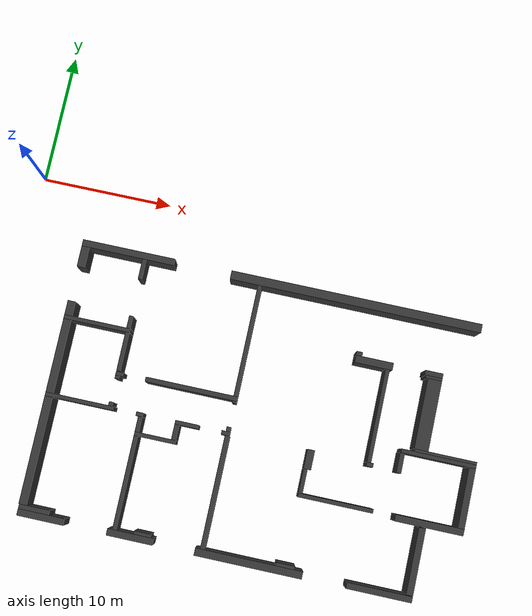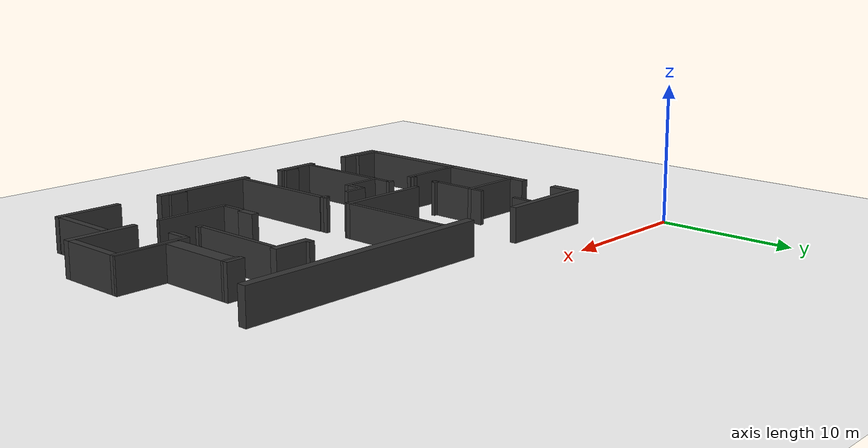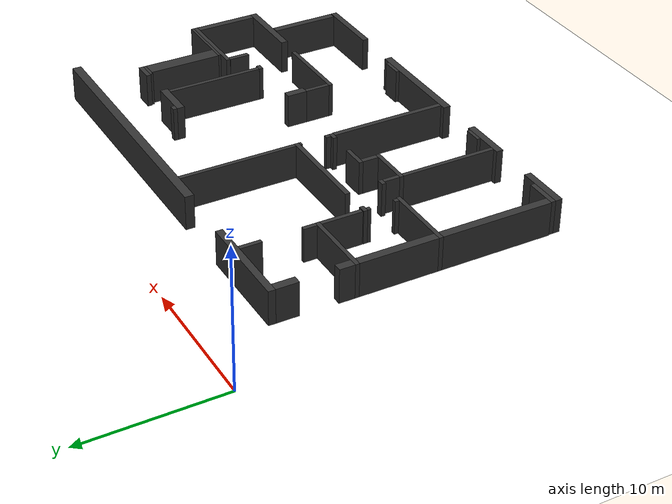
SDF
<?xml version="1.0" ?>
<sdf version="1.8">
  <world name="floorplan_world">
    <gravity>0 0 -9.8</gravity>
    <scene>
      <ambient>0.4 0.4 0.4 1</ambient>
      <background>0.7 0.7 0.7 1</background>
    </scene>
    <!-- Ground plane: pure white (no textures) -->
    <model name="ground_plane">
      <static>true</static>
      <link name="link">
        <collision name="collision">
          <geometry><plane><normal>0 0 1</normal><size>100 100</size></plane></geometry>
        </collision>
        <visual name="visual">
          <geometry><plane><normal>0 0 1</normal><size>100 100</size></plane></geometry>
          <material>
            <diffuse>1 1 1 1</diffuse>
            <ambient>1 1 1 1</ambient>
            <specular>0 0 0 1</specular>
          </material>
        </visual>
      </link>
    </model>

    <model name="wall_88_89">
      <static>true</static>
      <pose>8.0000 -4.6500 1.2500 0 0 0.000000</pose>
      <link name="link">
        <collision name="collision">
          <geometry><box><size>7.1000 0.5000 2.5000</size></box></geometry>
        </collision>
        <visual name="visual">
          <geometry><box><size>7.1000 0.5000 2.5000</size></box></geometry>
          <material><ambient>0.2 0.2 0.2 1.0</ambient></material>
        </visual>
      </link>
    </model>

    <model name="wall_87_318">
      <static>true</static>
      <pose>25.4750 -4.6750 1.2500 0 0 0.000000</pose>
      <link name="link">
        <collision name="collision">
          <geometry><box><size>19.1500 0.6500 2.5000</size></box></geometry>
        </collision>
        <visual name="visual">
          <geometry><box><size>19.1500 0.6500 2.5000</size></box></geometry>
          <material><ambient>0.2 0.2 0.2 1.0</ambient></material>
        </visual>
      </link>
    </model>

    <model name="wall_98_183">
      <static>true</static>
      <pose>9.3000 -5.6750 1.2500 0 0 0.000000</pose>
      <link name="link">
        <collision name="collision">
          <geometry><box><size>0.3000 1.5500 2.5000</size></box></geometry>
        </collision>
        <visual name="visual">
          <geometry><box><size>0.3000 1.5500 2.5000</size></box></geometry>
          <material><ambient>0.2 0.2 0.2 1.0</ambient></material>
        </visual>
      </link>
    </model>

    <model name="wall_98_89">
      <static>true</static>
      <pose>4.7500 -5.7000 1.2500 0 0 0.000000</pose>
      <link name="link">
        <collision name="collision">
          <geometry><box><size>0.6000 1.6000 2.5000</size></box></geometry>
        </collision>
        <visual name="visual">
          <geometry><box><size>0.6000 1.6000 2.5000</size></box></geometry>
          <material><ambient>0.2 0.2 0.2 1.0</ambient></material>
        </visual>
      </link>
    </model>

    <model name="wall_166_526">
      <static>true</static>
      <pose>26.5250 -8.4500 1.2500 0 0 0.000000</pose>
      <link name="link">
        <collision name="collision">
          <geometry><box><size>0.4500 0.3000 2.5000</size></box></geometry>
        </collision>
        <visual name="visual">
          <geometry><box><size>0.4500 0.3000 2.5000</size></box></geometry>
          <material><ambient>0.2 0.2 0.2 1.0</ambient></material>
        </visual>
      </link>
    </model>

    <model name="wall_172_631">
      <static>true</static>
      <pose>32.2250 -8.7750 1.2500 0 0 0.000000</pose>
      <link name="link">
        <collision name="collision">
          <geometry><box><size>1.3500 0.3500 2.5000</size></box></geometry>
        </collision>
        <visual name="visual">
          <geometry><box><size>1.3500 0.3500 2.5000</size></box></geometry>
          <material><ambient>0.2 0.2 0.2 1.0</ambient></material>
        </visual>
      </link>
    </model>

    <model name="wall_172_526">
      <static>true</static>
      <pose>27.7250 -8.8750 1.2500 0 0 0.000000</pose>
      <link name="link">
        <collision name="collision">
          <geometry><box><size>2.8500 0.5500 2.5000</size></box></geometry>
        </collision>
        <visual name="visual">
          <geometry><box><size>2.8500 0.5500 2.5000</size></box></geometry>
          <material><ambient>0.2 0.2 0.2 1.0</ambient></material>
        </visual>
      </link>
    </model>

    <model name="wall_179_633">
      <static>true</static>
      <pose>32.2750 -9.0500 1.2500 0 0 0.000000</pose>
      <link name="link">
        <collision name="collision">
          <geometry><box><size>1.2500 0.2000 2.5000</size></box></geometry>
        </collision>
        <visual name="visual">
          <geometry><box><size>1.2500 0.2000 2.5000</size></box></geometry>
          <material><ambient>0.2 0.2 0.2 1.0</ambient></material>
        </visual>
      </link>
    </model>

    <model name="wall_183_88">
      <static>true</static>
      <pose>4.7000 -9.7000 1.2500 0 0 0.000000</pose>
      <link name="link">
        <collision name="collision">
          <geometry><box><size>0.6000 1.1000 2.5000</size></box></geometry>
        </collision>
        <visual name="visual">
          <geometry><box><size>0.6000 1.1000 2.5000</size></box></geometry>
          <material><ambient>0.2 0.2 0.2 1.0</ambient></material>
        </visual>
      </link>
    </model>

    <model name="wall_186_183">
      <static>true</static>
      <pose>9.3000 -9.7750 1.2500 0 0 0.000000</pose>
      <link name="link">
        <collision name="collision">
          <geometry><box><size>0.3000 0.9500 2.5000</size></box></geometry>
        </collision>
        <visual name="visual">
          <geometry><box><size>0.3000 0.9500 2.5000</size></box></geometry>
          <material><ambient>0.2 0.2 0.2 1.0</ambient></material>
        </visual>
      </link>
    </model>

    <model name="wall_205_88">
      <static>true</static>
      <pose>6.9250 -10.4000 1.2500 0 0 0.000000</pose>
      <link name="link">
        <collision name="collision">
          <geometry><box><size>5.0500 0.3000 2.5000</size></box></geometry>
        </collision>
        <visual name="visual">
          <geometry><box><size>5.0500 0.3000 2.5000</size></box></geometry>
          <material><ambient>0.2 0.2 0.2 1.0</ambient></material>
        </visual>
      </link>
    </model>

    <model name="wall_211_183">
      <static>true</static>
      <pose>9.3000 -12.0250 1.2500 0 0 0.000000</pose>
      <link name="link">
        <collision name="collision">
          <geometry><box><size>0.3000 2.9500 2.5000</size></box></geometry>
        </collision>
        <visual name="visual">
          <geometry><box><size>0.3000 2.9500 2.5000</size></box></geometry>
          <material><ambient>0.2 0.2 0.2 1.0</ambient></material>
        </visual>
      </link>
    </model>

    <model name="wall_100_361">
      <static>true</static>
      <pose>18.2000 -9.2500 1.2500 0 0 0.000000</pose>
      <link name="link">
        <collision name="collision">
          <geometry><box><size>0.3000 8.5000 2.5000</size></box></geometry>
        </collision>
        <visual name="visual">
          <geometry><box><size>0.3000 8.5000 2.5000</size></box></geometry>
          <material><ambient>0.2 0.2 0.2 1.0</ambient></material>
        </visual>
      </link>
    </model>

    <model name="wall_271_183">
      <static>true</static>
      <pose>9.4250 -13.7000 1.2500 0 0 0.000000</pose>
      <link name="link">
        <collision name="collision">
          <geometry><box><size>0.5500 0.3000 2.5000</size></box></geometry>
        </collision>
        <visual name="visual">
          <geometry><box><size>0.5500 0.3000 2.5000</size></box></geometry>
          <material><ambient>0.2 0.2 0.2 1.0</ambient></material>
        </visual>
      </link>
    </model>

    <model name="wall_270_228">
      <static>true</static>
      <pose>14.8750 -13.6750 1.2500 0 0 0.000000</pose>
      <link name="link">
        <collision name="collision">
          <geometry><box><size>6.9500 0.3500 2.5000</size></box></geometry>
        </collision>
        <visual name="visual">
          <geometry><box><size>6.9500 0.3500 2.5000</size></box></geometry>
          <material><ambient>0.2 0.2 0.2 1.0</ambient></material>
        </visual>
      </link>
    </model>

    <model name="wall_277_361">
      <static>true</static>
      <pose>18.2000 -13.9250 1.2500 0 0 0.000000</pose>
      <link name="link">
        <collision name="collision">
          <geometry><box><size>0.3000 0.1500 2.5000</size></box></geometry>
        </collision>
        <visual name="visual">
          <geometry><box><size>0.3000 0.1500 2.5000</size></box></geometry>
          <material><ambient>0.2 0.2 0.2 1.0</ambient></material>
        </visual>
      </link>
    </model>

    <model name="wall_277_183">
      <static>true</static>
      <pose>9.3000 -13.9750 1.2500 0 0 0.000000</pose>
      <link name="link">
        <collision name="collision">
          <geometry><box><size>0.3000 0.2500 2.5000</size></box></geometry>
        </collision>
        <visual name="visual">
          <geometry><box><size>0.3000 0.2500 2.5000</size></box></geometry>
          <material><ambient>0.2 0.2 0.2 1.0</ambient></material>
        </visual>
      </link>
    </model>

    <model name="wall_183_637">
      <static>true</static>
      <pose>32.3750 -11.8000 1.2500 0 0 0.000000</pose>
      <link name="link">
        <collision name="collision">
          <geometry><box><size>1.0500 5.3000 2.5000</size></box></geometry>
        </collision>
        <visual name="visual">
          <geometry><box><size>1.0500 5.3000 2.5000</size></box></geometry>
          <material><ambient>0.2 0.2 0.2 1.0</ambient></material>
        </visual>
      </link>
    </model>

    <model name="wall_289_638">
      <static>true</static>
      <pose>34.2250 -14.5500 1.2500 0 0 0.000000</pose>
      <link name="link">
        <collision name="collision">
          <geometry><box><size>4.6500 0.2000 2.5000</size></box></geometry>
        </collision>
        <visual name="visual">
          <geometry><box><size>4.6500 0.2000 2.5000</size></box></geometry>
          <material><ambient>0.2 0.2 0.2 1.0</ambient></material>
        </visual>
      </link>
    </model>

    <model name="wall_293_619">
      <static>true</static>
      <pose>33.7500 -14.8000 1.2500 0 0 0.000000</pose>
      <link name="link">
        <collision name="collision">
          <geometry><box><size>5.6000 0.3000 2.5000</size></box></geometry>
        </collision>
        <visual name="visual">
          <geometry><box><size>5.6000 0.3000 2.5000</size></box></geometry>
          <material><ambient>0.2 0.2 0.2 1.0</ambient></material>
        </visual>
      </link>
    </model>

    <model name="wall_211_88">
      <static>true</static>
      <pose>4.7000 -13.3500 1.2500 0 0 0.000000</pose>
      <link name="link">
        <collision name="collision">
          <geometry><box><size>0.6000 5.6000 2.5000</size></box></geometry>
        </collision>
        <visual name="visual">
          <geometry><box><size>0.6000 5.6000 2.5000</size></box></geometry>
          <material><ambient>0.2 0.2 0.2 1.0</ambient></material>
        </visual>
      </link>
    </model>

    <model name="wall_317_183">
      <static>true</static>
      <pose>9.3000 -16.0000 1.2500 0 0 0.000000</pose>
      <link name="link">
        <collision name="collision">
          <geometry><box><size>0.3000 0.3000 2.5000</size></box></geometry>
        </collision>
        <visual name="visual">
          <geometry><box><size>0.3000 0.3000 2.5000</size></box></geometry>
          <material><ambient>0.2 0.2 0.2 1.0</ambient></material>
        </visual>
      </link>
    </model>

    <model name="wall_316_361">
      <static>true</static>
      <pose>18.2000 -15.9750 1.2500 0 0 0.000000</pose>
      <link name="link">
        <collision name="collision">
          <geometry><box><size>0.3000 0.3500 2.5000</size></box></geometry>
        </collision>
        <visual name="visual">
          <geometry><box><size>0.3000 0.3500 2.5000</size></box></geometry>
          <material><ambient>0.2 0.2 0.2 1.0</ambient></material>
        </visual>
      </link>
    </model>

    <model name="wall_183_573">
      <static>true</static>
      <pose>28.8000 -12.6500 1.2500 0 0 0.000000</pose>
      <link name="link">
        <collision name="collision">
          <geometry><box><size>0.3000 7.0000 2.5000</size></box></geometry>
        </collision>
        <visual name="visual">
          <geometry><box><size>0.3000 7.0000 2.5000</size></box></geometry>
          <material><ambient>0.2 0.2 0.2 1.0</ambient></material>
        </visual>
      </link>
    </model>

    <model name="wall_323_88">
      <static>true</static>
      <pose>6.9750 -16.3000 1.2500 0 0 0.000000</pose>
      <link name="link">
        <collision name="collision">
          <geometry><box><size>5.1500 0.3000 2.5000</size></box></geometry>
        </collision>
        <visual name="visual">
          <geometry><box><size>5.1500 0.3000 2.5000</size></box></geometry>
          <material><ambient>0.2 0.2 0.2 1.0</ambient></material>
        </visual>
      </link>
    </model>

    <model name="wall_323_226">
      <static>true</static>
      <pose>11.5500 -16.3000 1.2500 0 0 0.000000</pose>
      <link name="link">
        <collision name="collision">
          <geometry><box><size>0.5000 0.3000 2.5000</size></box></geometry>
        </collision>
        <visual name="visual">
          <geometry><box><size>0.5000 0.3000 2.5000</size></box></geometry>
          <material><ambient>0.2 0.2 0.2 1.0</ambient></material>
        </visual>
      </link>
    </model>

    <model name="wall_323_285">
      <static>true</static>
      <pose>15.1250 -16.3000 1.2500 0 0 0.000000</pose>
      <link name="link">
        <collision name="collision">
          <geometry><box><size>1.7500 0.3000 2.5000</size></box></geometry>
        </collision>
        <visual name="visual">
          <geometry><box><size>1.7500 0.3000 2.5000</size></box></geometry>
          <material><ambient>0.2 0.2 0.2 1.0</ambient></material>
        </visual>
      </link>
    </model>

    <model name="wall_323_355">
      <static>true</static>
      <pose>18.0500 -16.3000 1.2500 0 0 0.000000</pose>
      <link name="link">
        <collision name="collision">
          <geometry><box><size>0.6000 0.3000 2.5000</size></box></geometry>
        </collision>
        <visual name="visual">
          <geometry><box><size>0.6000 0.3000 2.5000</size></box></geometry>
          <material><ambient>0.2 0.2 0.2 1.0</ambient></material>
        </visual>
      </link>
    </model>

    <model name="wall_323_573">
      <static>true</static>
      <pose>28.9000 -16.3000 1.2500 0 0 0.000000</pose>
      <link name="link">
        <collision name="collision">
          <geometry><box><size>0.5000 0.3000 2.5000</size></box></geometry>
        </collision>
        <visual name="visual">
          <geometry><box><size>0.5000 0.3000 2.5000</size></box></geometry>
          <material><ambient>0.2 0.2 0.2 1.0</ambient></material>
        </visual>
      </link>
    </model>

    <model name="wall_299_618">
      <static>true</static>
      <pose>31.0750 -15.7000 1.2500 0 0 0.000000</pose>
      <link name="link">
        <collision name="collision">
          <geometry><box><size>0.3500 1.5000 2.5000</size></box></geometry>
        </collision>
        <visual name="visual">
          <geometry><box><size>0.3500 1.5000 2.5000</size></box></geometry>
          <material><ambient>0.2 0.2 0.2 1.0</ambient></material>
        </visual>
      </link>
    </model>

    <model name="wall_329_230">
      <static>true</static>
      <pose>11.6500 -17.0250 1.2500 0 0 0.000000</pose>
      <link name="link">
        <collision name="collision">
          <geometry><box><size>0.3000 1.1500 2.5000</size></box></geometry>
        </collision>
        <visual name="visual">
          <geometry><box><size>0.3000 1.1500 2.5000</size></box></geometry>
          <material><ambient>0.2 0.2 0.2 1.0</ambient></material>
        </visual>
      </link>
    </model>

    <model name="wall_329_285">
      <static>true</static>
      <pose>14.4250 -17.0250 1.2500 0 0 0.000000</pose>
      <link name="link">
        <collision name="collision">
          <geometry><box><size>0.3500 1.1500 2.5000</size></box></geometry>
        </collision>
        <visual name="visual">
          <geometry><box><size>0.3500 1.1500 2.5000</size></box></geometry>
          <material><ambient>0.2 0.2 0.2 1.0</ambient></material>
        </visual>
      </link>
    </model>

    <model name="wall_323_484">
      <static>true</static>
      <pose>24.4750 -16.8750 1.2500 0 0 0.000000</pose>
      <link name="link">
        <collision name="collision">
          <geometry><box><size>0.5500 1.4500 2.5000</size></box></geometry>
        </collision>
        <visual name="visual">
          <geometry><box><size>0.5500 1.4500 2.5000</size></box></geometry>
          <material><ambient>0.2 0.2 0.2 1.0</ambient></material>
        </visual>
      </link>
    </model>

    <model name="wall_352_230">
      <static>true</static>
      <pose>13.0500 -17.7500 1.2500 0 0 0.000000</pose>
      <link name="link">
        <collision name="collision">
          <geometry><box><size>3.1000 0.3000 2.5000</size></box></geometry>
        </collision>
        <visual name="visual">
          <geometry><box><size>3.1000 0.3000 2.5000</size></box></geometry>
          <material><ambient>0.2 0.2 0.2 1.0</ambient></material>
        </visual>
      </link>
    </model>

    <model name="wall_352_484">
      <static>true</static>
      <pose>24.3500 -18.5000 1.2500 0 0 0.000000</pose>
      <link name="link">
        <collision name="collision">
          <geometry><box><size>0.3000 1.8000 2.5000</size></box></geometry>
        </collision>
        <visual name="visual">
          <geometry><box><size>0.3000 1.8000 2.5000</size></box></geometry>
          <material><ambient>0.2 0.2 0.2 1.0</ambient></material>
        </visual>
      </link>
    </model>

    <model name="wall_299_721">
      <static>true</static>
      <pose>36.3000 -17.1750 1.2500 0 0 0.000000</pose>
      <link name="link">
        <collision name="collision">
          <geometry><box><size>0.5000 4.4500 2.5000</size></box></geometry>
        </collision>
        <visual name="visual">
          <geometry><box><size>0.5000 4.4500 2.5000</size></box></geometry>
          <material><ambient>0.2 0.2 0.2 1.0</ambient></material>
        </visual>
      </link>
    </model>

    <model name="wall_388_484">
      <static>true</static>
      <pose>27.0000 -19.5500 1.2500 0 0 0.000000</pose>
      <link name="link">
        <collision name="collision">
          <geometry><box><size>5.6000 0.3000 2.5000</size></box></geometry>
        </collision>
        <visual name="visual">
          <geometry><box><size>5.6000 0.3000 2.5000</size></box></geometry>
          <material><ambient>0.2 0.2 0.2 1.0</ambient></material>
        </visual>
      </link>
    </model>

    <model name="wall_388_629">
      <static>true</static>
      <pose>34.0000 -19.6500 1.2500 0 0 0.000000</pose>
      <link name="link">
        <collision name="collision">
          <geometry><box><size>5.1000 0.5000 2.5000</size></box></geometry>
        </collision>
        <visual name="visual">
          <geometry><box><size>5.1000 0.5000 2.5000</size></box></geometry>
          <material><ambient>0.2 0.2 0.2 1.0</ambient></material>
        </visual>
      </link>
    </model>

    <model name="wall_329_88">
      <static>true</static>
      <pose>4.7000 -20.4750 1.2500 0 0 0.000000</pose>
      <link name="link">
        <collision name="collision">
          <geometry><box><size>0.6000 8.0500 2.5000</size></box></geometry>
        </collision>
        <visual name="visual">
          <geometry><box><size>0.6000 8.0500 2.5000</size></box></geometry>
          <material><ambient>0.2 0.2 0.2 1.0</ambient></material>
        </visual>
      </link>
    </model>

    <model name="wall_490_89">
      <static>true</static>
      <pose>5.6000 -24.6750 1.2500 0 0 0.000000</pose>
      <link name="link">
        <collision name="collision">
          <geometry><box><size>2.3000 0.3500 2.5000</size></box></geometry>
        </collision>
        <visual name="visual">
          <geometry><box><size>2.3000 0.3500 2.5000</size></box></geometry>
          <material><ambient>0.2 0.2 0.2 1.0</ambient></material>
        </visual>
      </link>
    </model>

    <model name="wall_358_230">
      <static>true</static>
      <pose>11.6500 -21.3750 1.2500 0 0 0.000000</pose>
      <link name="link">
        <collision name="collision">
          <geometry><box><size>0.3000 6.9500 2.5000</size></box></geometry>
        </collision>
        <visual name="visual">
          <geometry><box><size>0.3000 6.9500 2.5000</size></box></geometry>
          <material><ambient>0.2 0.2 0.2 1.0</ambient></material>
        </visual>
      </link>
    </model>

    <model name="wall_492_262">
      <static>true</static>
      <pose>13.7250 -24.7250 1.2500 0 0 0.000000</pose>
      <link name="link">
        <collision name="collision">
          <geometry><box><size>1.2500 0.2500 2.5000</size></box></geometry>
        </collision>
        <visual name="visual">
          <geometry><box><size>1.2500 0.2500 2.5000</size></box></geometry>
          <material><ambient>0.2 0.2 0.2 1.0</ambient></material>
        </visual>
      </link>
    </model>

    <model name="wall_329_361">
      <static>true</static>
      <pose>18.2250 -20.6500 1.2500 0 0 0.000000</pose>
      <link name="link">
        <collision name="collision">
          <geometry><box><size>0.3500 8.4000 2.5000</size></box></geometry>
        </collision>
        <visual name="visual">
          <geometry><box><size>0.3500 8.4000 2.5000</size></box></geometry>
          <material><ambient>0.2 0.2 0.2 1.0</ambient></material>
        </visual>
      </link>
    </model>

    <model name="wall_492_473">
      <static>true</static>
      <pose>24.3500 -24.7250 1.2500 0 0 0.000000</pose>
      <link name="link">
        <collision name="collision">
          <geometry><box><size>1.4000 0.2500 2.5000</size></box></geometry>
        </collision>
        <visual name="visual">
          <geometry><box><size>1.4000 0.2500 2.5000</size></box></geometry>
          <material><ambient>0.2 0.2 0.2 1.0</ambient></material>
        </visual>
      </link>
    </model>

    <model name="wall_399_666">
      <static>true</static>
      <pose>33.5500 -22.4000 1.2500 0 0 0.000000</pose>
      <link name="link">
        <collision name="collision">
          <geometry><box><size>0.5000 4.9000 2.5000</size></box></geometry>
        </collision>
        <visual name="visual">
          <geometry><box><size>0.5000 4.9000 2.5000</size></box></geometry>
          <material><ambient>0.2 0.2 0.2 1.0</ambient></material>
        </visual>
      </link>
    </model>

    <model name="wall_497_89">
      <static>true</static>
      <pose>6.2000 -25.1000 1.2500 0 0 0.000000</pose>
      <link name="link">
        <collision name="collision">
          <geometry><box><size>3.5000 0.5000 2.5000</size></box></geometry>
        </collision>
        <visual name="visual">
          <geometry><box><size>3.5000 0.5000 2.5000</size></box></geometry>
          <material><ambient>0.2 0.2 0.2 1.0</ambient></material>
        </visual>
      </link>
    </model>

    <model name="wall_497_223">
      <static>true</static>
      <pose>12.8750 -25.1000 1.2500 0 0 0.000000</pose>
      <link name="link">
        <collision name="collision">
          <geometry><box><size>3.4500 0.5000 2.5000</size></box></geometry>
        </collision>
        <visual name="visual">
          <geometry><box><size>3.4500 0.5000 2.5000</size></box></geometry>
          <material><ambient>0.2 0.2 0.2 1.0</ambient></material>
        </visual>
      </link>
    </model>

    <model name="wall_498_579">
      <static>true</static>
      <pose>31.3750 -25.1250 1.2500 0 0 0.000000</pose>
      <link name="link">
        <collision name="collision">
          <geometry><box><size>4.8500 0.4500 2.5000</size></box></geometry>
        </collision>
        <visual name="visual">
          <geometry><box><size>4.8500 0.4500 2.5000</size></box></geometry>
          <material><ambient>0.2 0.2 0.2 1.0</ambient></material>
        </visual>
      </link>
    </model>

    <model name="wall_497_354">
      <static>true</static>
      <pose>21.7000 -25.1250 1.2500 0 0 0.000000</pose>
      <link name="link">
        <collision name="collision">
          <geometry><box><size>8.0000 0.5500 2.5000</size></box></geometry>
        </collision>
        <visual name="visual">
          <geometry><box><size>8.0000 0.5500 2.5000</size></box></geometry>
          <material><ambient>0.2 0.2 0.2 1.0</ambient></material>
        </visual>
      </link>
    </model>

  </world>
</sdf>
